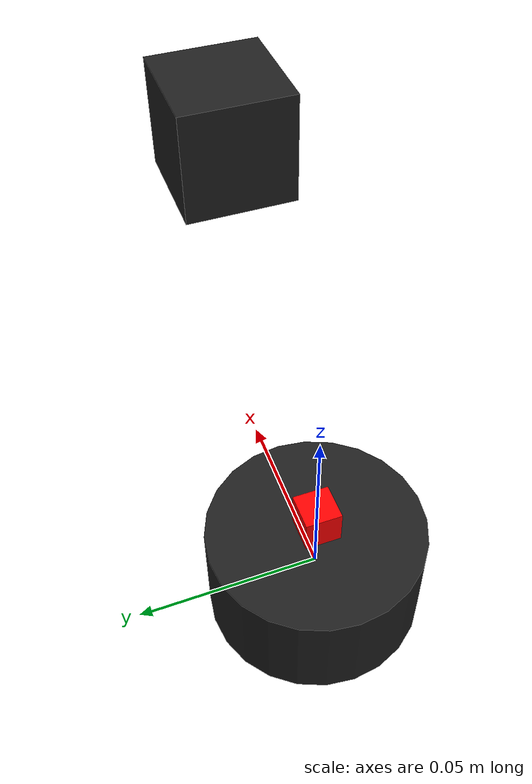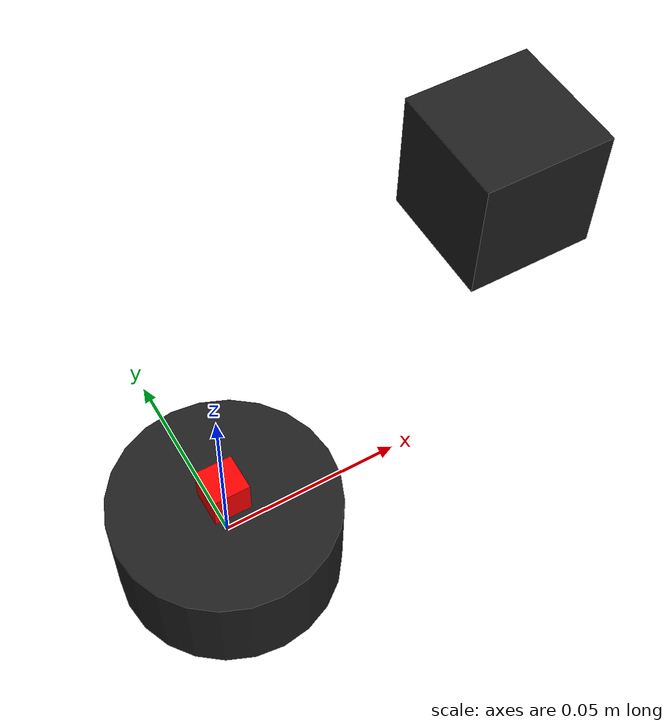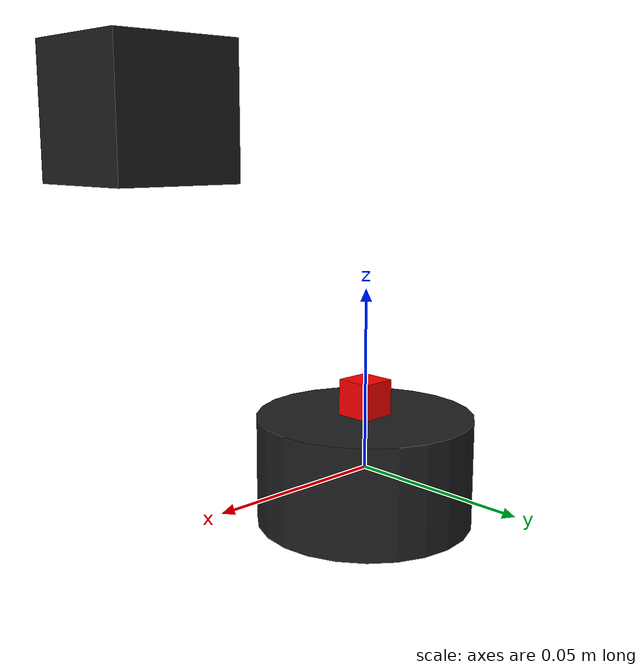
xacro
<robot name="my_car_camera_laser" xmlns:xacro="http://wiki.ros.org/xacro" reference= "base_footprint_radius">

    <xacro:include filename="my_inertial.xacro" />
    <xacro:include filename="my_vodyne_gazebo.xacro" />
    <xacro:include filename="my_imu_gazebo.xacro" />
    <xacro:include filename="my_camera_gazebo.xacro" />

    <!--camera-->
     <xacro:include filename="$(find icl_simu)/urdf/my_sensor_camera.xacro" />

    <!--imu-->
    <xacro:include filename="$(find icl_simu)/urdf/my_sensor_imu.xacro" />

    <!--vodyne-->
    <xacro:include filename="$(find icl_simu)/urdf/my_sensor_vodyne.xacro" />

</robot>

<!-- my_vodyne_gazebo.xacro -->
<robot name="my_vodyne" xmlns:xacro="http://wiki.ros.org/xacro">
    <!-- lidar property -->
    <xacro:property name="M_PI" value="3.1415926"/>
    <xacro:property name="laser_length" value="0.03" />
    <xacro:property name="laser_radius" value="0.03" />
    <xacro:property name="laser_x" value="0.0" />
    <xacro:property name="laser_y" value="0.0" />
    <xacro:property name="laser_z" value="0.095" />
    <xacro:property name="laser_m" value="0.1" />

    <!-- base_link -->
    <link name="base_link">
        <visual>
            <geometry>
                <cylinder radius="${laser_radius}" length="${laser_length}" />
            </geometry>
            <origin xyz="0.0 0.0 0.0" rpy="0.0 0.0 0.0" />
            <material name="black" />
        </visual>
        <collision>
            <geometry>
                <cylinder radius="${laser_radius}" length="${laser_length}" />
            </geometry>
            <origin xyz="0.0 0.0 0.0" rpy="0.0 0.0 0.0" />
        </collision>
        <xacro:cylinder_inertial_matrix m="${laser_m}" r="${laser_radius}" h="${laser_length}" />
    </link>
   <gazebo reference="base_link">
        <kinematic>1</kinematic>
   </gazebo>
    <!-- lidar link -->
    <link name="vodyne">
        <visual>
            <geometry>
                <cylinder radius="${laser_radius}" length="${laser_length}" />
            </geometry>
            <origin xyz="0 0 0" rpy="0 0 0" />
            <material name="black" />
        </visual>
        <collision>
            <geometry>
                <cylinder radius="${laser_radius}" length="${laser_length}" />
            </geometry>
            <origin xyz="0.0 0.0 0.0" rpy="0.0 0.0 0.0" />
        </collision>
        <xacro:cylinder_inertial_matrix m="${laser_m}" r="${laser_radius}" h="${laser_length}" />
    </link>

    <joint name="vodynetoBaselink" type="fixed">
        <parent link="base_link" />
        <child link="vodyne" />
        <origin xyz="0 0 0" rpy="0 0 0"    />
    </joint>
    <gazebo reference="vodyne">
        <material>Gazebo/Blue</material>
         <kinematic>1</kinematic>
    </gazebo>
</robot>

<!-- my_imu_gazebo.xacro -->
<robot name="imu" xmlns:xacro="http://wiki.ros.org/xacro">
    <xacro:property name="imu_offset_x" value="0" />
    <xacro:property name="imu_offset_y" value="0" />
    <xacro:property name="imu_offset_z" value="0.02" />
    <xacro:property name="imu_size"     value="0.01" />
    <xacro:property name="imu_m" value="0.01" /> <!-- imu mass -->
    <!-- imu -->
    <joint name="imutoVodyne" type="fixed">
        <origin xyz="${imu_offset_x} ${imu_offset_y} ${imu_offset_z}" rpy="0 0 0" />
        <parent link="vodyne"/>
        <child link="imu"/>
    </joint>

    <link name="imu">
        <visual>
            <origin rpy="0 0 0" xyz="0 0 0" />
            <geometry>
                    <box size="${imu_size} ${imu_size} ${imu_size}"/>
            </geometry>
            <material name= "red" >
              <color rgba="1.0 0.0 0.0 1.0" />
            </material>
        </visual>
        <collision>
            <geometry>
                <box size="${imu_size} ${imu_size} ${imu_size}" />
            </geometry>
            <origin xyz="0.0 0.0 0" rpy="0.0 0.0 0.0" />
        </collision>
        <box_inertial_matrix m = "${imu_m}" l = "${imu_size}" w = "${imu_size}" h = "${imu_size}"/>
    </link>

    <gazebo reference="imu">
        <material>Gazebo/Red</material>
         <kinematic>1</kinematic>
    </gazebo>
</robot>

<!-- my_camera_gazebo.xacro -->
<!--add camera to base-->
<robot name="use_camera" xmlns:xacro="http://wiki.ros.org/xacro">
    <!-- camera property -->
     <xacro:property name="camera_size"     value="0.03" />
    <xacro:property name="camera_x" value="0.07" />
    <xacro:property name="camera_y" value="0" />
    <xacro:property name="camera_z" value="0.095" /> <!-- z = h_bracket  / 2 + h_lidar / 2  -->
    <xacro:property name="camera_m" value="0.01" /> <!-- imu mass -->
    <!-- camera and link -->
    <link name="camera_link">
        <visual>
            <origin rpy="0 0 0" xyz="0 0 0" />
            <geometry>
                <box size="${camera_size} ${camera_size} ${camera_size}"/>
            </geometry>
            <material name="black" />
        </visual>
        <collision>
            <geometry>
                <box size="${camera_size} ${camera_size} ${camera_size}"/>
            </geometry>
            <origin xyz="0.0 0.0 0.0" rpy="0.0 0.0 0.0" />
        </collision>
        <xacro:Box_inertial_matrix m="${camera_m}" l="${camera_size}" w="${camera_size}" h="${camera_size}" />
    </link>

    <joint name="cameratoBaselink" type="fixed">
        <parent link="vodyne" />
        <child link="camera_link" />
        <origin xyz="${camera_x} ${camera_y} ${camera_z}" />

    </joint>

    <gazebo reference="camera_link">
        <material>Gazebo/Black</material>
        <kinematic>1</kinematic>
    </gazebo>
</robot>
